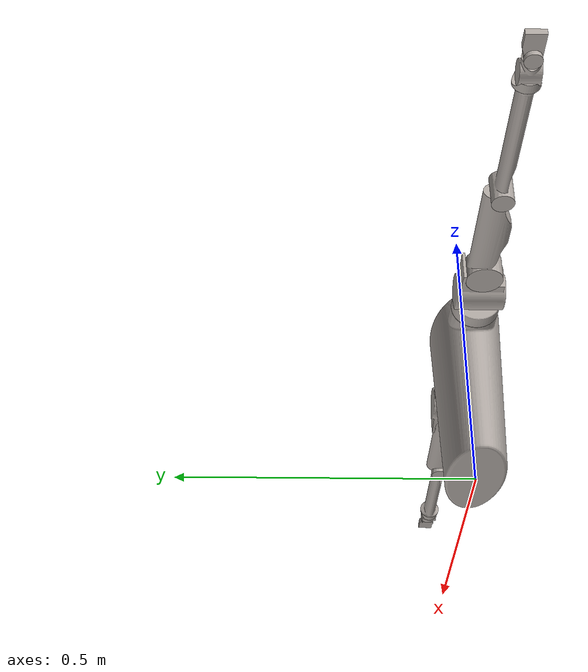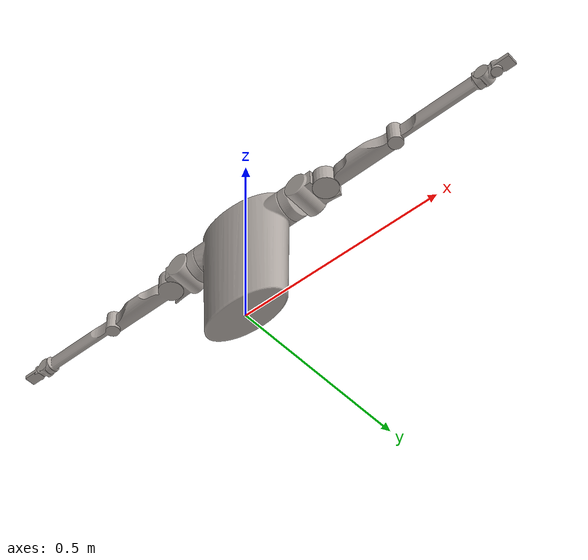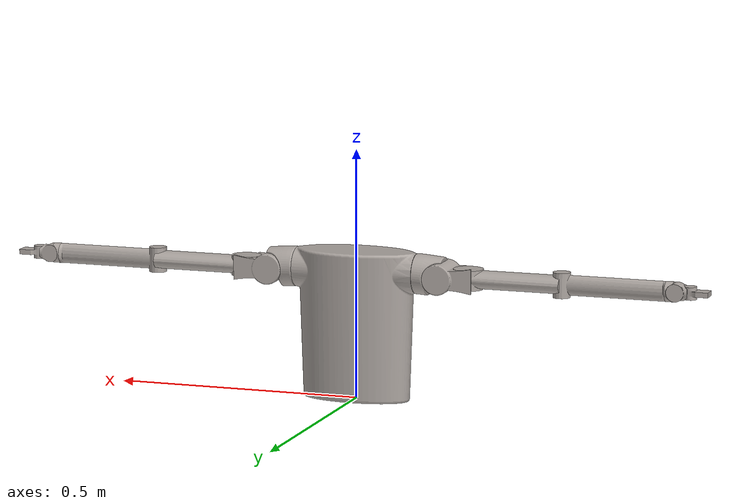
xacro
<robot name="upper_14" xmlns:xacro="http://www.ros.org/wiki/xacro">

  <!--fix the upper_body_link-->
  <link name="world"/>

  <joint name="fixed" type="fixed">
    <parent link="world"/>
    <child link="upper_body_link"/>
  </joint>

  <!--This is the robot describtion-->
  <link name="upper_body_link">
    <inertial>
      <origin xyz="-4.3975E-06 -1.1609E-08 0.15913" rpy="0 0 0" />
      <mass value="26.766" />
      <inertia
        ixx="10" ixy="10" ixz="10"
        iyy="10" iyz="10"
        izz="10" />
    </inertial>

    <visual>
      <origin xyz="0 0 0" rpy="0 0 0" />
      <geometry>
        <mesh filename="package://upper_14/meshes/upper_body_link.STL" />
      </geometry>
      <material name="">
        <color rgba="0.68627 0.65882 0.63922 1" />
      </material>
    </visual>

    <collision>
      <origin xyz="0 0 0" rpy="0 0 0" />
      <geometry>
        <mesh filename="package://upper_14/meshes/upper_body_link.STL" />
      </geometry>
    </collision>
  </link>

  <joint name="l_shoulder_roll" type="continuous">
    <origin xyz="0.125 0 0.26" rpy="0 -1.5708 0" />
    <parent link="upper_body_link" />
    <child link="l_shoulder_roll_link" />
    <axis xyz="0 0 1" />
    <dynamics damping="0.7" friction="0.2"/>
  </joint>

  <link name="l_shoulder_roll_link">
    <inertial>
      <origin xyz="0.0033683 -7.6367E-09 -0.015946" rpy="0 0 0" />
      <mass value="0.63417" />
      <inertia
        ixx="0.000315" ixy="0" ixz="-5.2E-05"
        iyy="0.000373" iyz="0"
        izz="0.000525" />
    </inertial>

    <visual>
      <origin xyz="0 0 0" rpy="0 0 0" />
      <geometry>
        <mesh filename="package://upper_14/meshes/l_shoulder_roll_link.STL" />
      </geometry>
      <material name="">
        <color rgba="0.68627 0.65882 0.63922 1" />
      </material>
    </visual>

    <collision>
      <origin xyz="0 0 0" rpy="0 0 0" />
      <geometry>
        <mesh filename="package://upper_14/meshes/l_shoulder_roll_link.STL" />
      </geometry>
    </collision>
  </link>

  <link name="l_shoulder_pitch_link">
    <inertial>
      <origin xyz="0.0032993 5.9585E-10 -0.00098089" rpy="0 0 0" />
      <mass value="1.0724" />
      <inertia
        ixx="0.000841" ixy="0" ixz="-5.4E-05"
        iyy="0.000973" iyz="0"
        izz="0.000606" />
    </inertial>

    <visual>
      <origin xyz="0 0 0" rpy="0 0 0" />
      <geometry>
        <mesh filename="package://upper_14/meshes/l_shoulder_pitch_link.STL" />
      </geometry>
      <material name="">
        <color rgba="0.68627 0.65882 0.63922 1" />
      </material>
    </visual>

    <collision>
      <origin xyz="0 0 0" rpy="0 0 0" />
      <geometry>
        <mesh filename="package://upper_14/meshes/l_shoulder_pitch_link.STL" />
      </geometry>
    </collision>
  </link>

  <joint name="l_shoulder_pitch" type="revolute">
    <origin xyz="-0.0037133 0 -0.052049" rpy="1.5708 1.5708 0" />
    <parent link="l_shoulder_roll_link" />
    <child link="l_shoulder_pitch_link" />
    <axis xyz="0 0 -1" />
    <limit lower="-0.6981" upper="1.7104" effort="50000" velocity="500" />
    <dynamics damping="0.7" friction="0.2"  />
  </joint>

  <link name="l_shoulder_yaw_link">
    <inertial>
      <origin xyz="0.065121 -0.0020967 1.7569E-07" rpy="0 0 0" />
      <mass value="1.3826" />
      <inertia
        ixx="0.000398" ixy="-0.000132" ixz="0"
        iyy="0.005026" iyz="0"
        izz="0.005143" />
    </inertial>

    <visual>
      <origin xyz="0 0 0" rpy="0 0 0" />
      <geometry>
        <mesh filename="package://upper_14/meshes/l_shoulder_yaw_link.STL" />
      </geometry>
      <material name="">
        <color rgba="0.68627 0.65882 0.63922 1" />
      </material>
    </visual>

    <collision>
      <origin xyz="0 0 0" rpy="0 0 0" />
      <geometry>
        <mesh filename="package://upper_14/meshes/l_shoulder_yaw_link.STL" />
      </geometry>
    </collision>
  </link>

  <joint name="l_shoulder_yaw" type="revolute">
    <origin xyz="0.055 0 0" rpy="1.5708 -4.1633E-17 -2.6021E-18" />
    <parent link="l_shoulder_pitch_link" />
    <child link="l_shoulder_yaw_link" />
    <axis xyz="0 0 1" />
    <limit lower="-0.1396" upper="1.6231" effort="50000" velocity="500" />
    <dynamics damping="0.7" friction="0.2"  />
  </joint>

  <link name="l_elbow_link">
    <inertial>
      <origin xyz="0.088184 -0.0003499 -1.9687E-07" rpy="0 0 0" />
      <mass value="0.81599" />
      <inertia
        ixx="0.000143" ixy="1.5E-05" ixz="0"
        iyy="0.004114" iyz="0"
        izz="0.004046" />
    </inertial>

    <visual>
      <origin xyz="0 0 0" rpy="0 0 0" />
      <geometry>
        <mesh filename="package://upper_14/meshes/l_elbow_link.STL" />
      </geometry>
      <material name="">
        <color rgba="0.68627 0.65882 0.63922 1" />
      </material>
    </visual>

    <collision>
      <origin xyz="0 0 0" rpy="0 0 0" />
      <geometry>
        <mesh filename="package://upper_14/meshes/l_elbow_link.STL" />
      </geometry>
    </collision>
  </link>

  <joint name="l_elbow" type="revolute">
    <origin xyz="0.1903 0 0" rpy="-4.2858E-16 9.6277E-17 -4.1263E-32" />
    <parent link="l_shoulder_yaw_link" />
    <child link="l_elbow_link" />
    <axis xyz="0 0 1" />
    <limit lower="-0.7853" upper="2.4085" effort="50000" velocity="500" />
    <dynamics damping="0.7" friction="0.2"  />
  </joint>

  <link name="l_wrist_roll_link">
    <inertial>
      <origin xyz="-1.4822E-09 1.5222E-08 -0.0042713" rpy="0 0 0" />
      <mass value="0.033212" />
      <inertia
        ixx="3E-03" ixy="0" ixz="0"
        iyy="6E-03" iyz="0"
        izz="8E-03" />
    </inertial>

    <visual>
      <origin xyz="0 0 0" rpy="0 0 0" />
      <geometry>
        <mesh filename="package://upper_14/meshes/l_wrist_roll_link.STL" />
      </geometry>
      <material name="">
        <color rgba="0.68627 0.65882 0.63922 1" />
      </material>
    </visual>

    <collision>
      <origin xyz="0 0 0" rpy="0 0 0" />
      <geometry>
        <mesh filename="package://upper_14/meshes/l_wrist_roll_link.STL" />
      </geometry>
    </collision>
  </link>

  <joint name="l_wrist_roll" type="continuous">
    <origin xyz="0.21 0 0" rpy="3.1416 1.5708 0" />
    <parent link="l_elbow_link" />
    <child link="l_wrist_roll_link" />
    <axis xyz="0 0 1" />
    <limit effort="50000" velocity="500" />
    <dynamics damping="0.7" friction="0.2"  />
  </joint>

  <link name="l_wrist_pitch_link">
    <inertial>
      <origin xyz="0.0009785 -2.8101E-08 -1.4985E-08" rpy="0 0 0" />
      <mass value="0.13385" />
      <inertia
        ixx="2.1E-03" ixy="0" ixz="0"
        iyy="2.2E-03" iyz="0"
        izz="2.2E-03" />
    </inertial>

    <visual>
      <origin xyz="0 0 0" rpy="0 0 0" />
      <geometry>
        <mesh filename="package://upper_14/meshes/l_wrist_pitch_link.STL" />
      </geometry>
      <material name="">
        <color rgba="0.68627 0.65882 0.63922 1" />
      </material>
    </visual>

    <collision>
      <origin xyz="0 0 0" rpy="0 0 0" />
      <geometry>
        <mesh filename="package://upper_14/meshes/l_wrist_pitch_link.STL" />
      </geometry>
    </collision>
  </link>

  <joint name="l_wrist_pitch" type="revolute">
    <origin xyz="0 0 -0.02" rpy="1.5708 1.5708 0" />
    <parent link="l_wrist_roll_link" />
    <child link="l_wrist_pitch_link" />
    <axis xyz="0 0 -1" />
    <limit lower="-0.6981" upper="0.6981" effort="50000" velocity="500" />
    <dynamics damping="0.7" friction="0.2"  />
  </joint>

  <link name="l_wrist_yaw_link">
    <inertial>
      <origin xyz="0.0096828 -0.0007914 2.2204E-16" rpy="0 0 0" />
      <mass value="0.089949" />
      <inertia
        ixx="8E-03" ixy="-1E-03" ixz="0"
        iyy="2E-03" iyz="0"
        izz="2.2E-03" />
    </inertial>

    <visual>
      <origin xyz="0 0 0" rpy="0 0 0" />
      <geometry>
        <mesh filename="package://upper_14/meshes/l_wrist_yaw_link.STL" />
      </geometry>
      <material name="">
        <color rgba="0.68627 0.65882 0.63922 1" />
      </material>
    </visual>

    <collision>
      <origin xyz="0 0 0" rpy="0 0 0" />
      <geometry>
        <mesh filename="package://upper_14/meshes/l_wrist_yaw_link.STL" />
      </geometry>
    </collision>
  </link>

  <joint name="l_wrist_yaw" type="revolute">
    <origin xyz="0.028 0 0" rpy="1.5708 -1.0276E-16 -6.9285E-31" />
    <parent link="l_wrist_pitch_link" />
    <child link="l_wrist_yaw_link" />
    <axis xyz="0 0 1" />
    <limit lower="-0.3141" upper="0.3141" effort="50000" velocity="500" />
    <dynamics damping="0.7" friction="0.2"  />
  </joint>

  <link name="r_shoulder_roll_link">
    <inertial>
      <origin xyz="0.0033683 7.6367E-09 0.015946" rpy="0 0 0" />
      <mass value="0.63417" />
      <inertia
        ixx="0.000315" ixy="0" ixz="5.2E-05"
        iyy="0.000373" iyz="0"
        izz="0.000525" />
    </inertial>

    <visual>
      <origin xyz="0 0 0" rpy="0 0 0" />
      <geometry>
        <mesh filename="package://upper_14/meshes/r_shoulder_roll_link.STL" />
      </geometry>
      <material name="">
        <color rgba="0.68627 0.65882 0.63922 1" />
      </material>
    </visual>

    <collision>
      <origin xyz="0 0 0" rpy="0 0 0" />
      <geometry>
        <mesh filename="package://upper_14/meshes/r_shoulder_roll_link.STL" />
      </geometry>
    </collision>
  </link>

  <joint name="r_shoulder_roll" type="continuous">
    <origin xyz="-0.125 0 0.26" rpy="0 -1.5708 0" />
    <parent link="upper_body_link" />
    <child link="r_shoulder_roll_link" />
    <axis xyz="0 0 -1" />
    <limit effort="50000" velocity="500" />
    <dynamics damping="0.7" friction="0.2"  />
  </joint>

  <link name="r_shoulder_pitch_link">
    <inertial>
      <origin xyz="0.0032993 -5.9585E-10 0.00098089" rpy="0 0 0" />
      <mass value="1.0724" />
      <inertia
        ixx="0.000841" ixy="0" ixz="5.4E-05"
        iyy="0.000973" iyz="0"
        izz="0.000606" />
    </inertial>

    <visual>
      <origin xyz="0 0 0" rpy="0 0 0" />
      <geometry>
        <mesh filename="package://upper_14/meshes/r_shoulder_pitch_link.STL" />
      </geometry>
      <material name="">
        <color rgba="0.68627 0.65882 0.63922 1" />
      </material>
    </visual>

    <collision>
      <origin xyz="0 0 0" rpy="0 0 0" />
      <geometry>
        <mesh filename="package://upper_14/meshes/r_shoulder_pitch_link.STL" />
      </geometry>
    </collision>
  </link>

  <joint name="r_shoulder_pitch" type="revolute">
    <origin xyz="-0.0037133 0 0.052049" rpy="-1.5708 -1.5708 0" />
    <parent link="r_shoulder_roll_link" />
    <child link="r_shoulder_pitch_link" />
    <axis xyz="0 0 -1" />
    <limit lower="-0.6981" upper="1.7104" effort="50000" velocity="500" />
    <dynamics damping="0.7" friction="0.2"  />
  </joint>

  <link name="r_shoulder_yaw_link">
    <inertial>
      <origin xyz="0.065121 -0.0020967 1.7569E-07" rpy="0 0 0" />
      <mass value="1.3826" />
      <inertia
        ixx="0.000398" ixy="-0.000132" ixz="0"
        iyy="0.005026" iyz="0"
        izz="0.005143" />
    </inertial>

    <visual>
      <origin xyz="0 0 0" rpy="0 0 0" />
      <geometry>
        <mesh filename="package://upper_14/meshes/r_shoulder_yaw_link.STL" />
      </geometry>
      <material name="">
        <color rgba="0.68627 0.65882 0.63922 1" />
      </material>
    </visual>

    <collision>
      <origin xyz="0 0 0" rpy="0 0 0" />
      <geometry>
        <mesh filename="package://upper_14/meshes/r_shoulder_yaw_link.STL" />
      </geometry>
    </collision>
  </link>

  <joint name="r_shoulder_yaw" type="revolute">
    <origin xyz="0.055 0 0" rpy="-1.5708 3.2819E-17 -4.3368E-18" />
    <parent link="r_shoulder_pitch_link" />
    <child link="r_shoulder_yaw_link" />
    <axis xyz="0 0 1" />
    <limit lower="-0.1396" upper="1.6231" effort="50000" velocity="500" />
    <dynamics damping="0.7" friction="0.2"  />
  </joint>

  <link name="r_elbow_link">
    <inertial>
      <origin xyz="0.088184 -0.0003499 -1.9687E-07" rpy="0 0 0" />
      <mass value="0.81599" />
      <inertia
        ixx="0.000143" ixy="1.5E-05" ixz="0"
        iyy="0.004114" iyz="0"
        izz="0.004046" />
    </inertial>

    <visual>
      <origin xyz="0 0 0" rpy="0 0 0" />
      <geometry>
        <mesh filename="package://upper_14/meshes/r_elbow_link.STL" />
      </geometry>
      <material name="">
        <color rgba="0.68627 0.65882 0.63922 1" />
      </material>
    </visual>

    <collision>
      <origin xyz="0 0 0" rpy="0 0 0" />
      <geometry>
        <mesh filename="package://upper_14/meshes/r_elbow_link.STL" />
      </geometry>
    </collision>
  </link>

  <joint name="r_elbow" type="revolute">
    <origin xyz="0.1903 0 0" rpy="1.2818E-16 -4.3368E-18 -2.8339E-19" />
    <parent link="r_shoulder_yaw_link" />
    <child link="r_elbow_link" />
    <axis xyz="0 0 1" />
    <limit lower="-0.7853" upper="2.4085" effort="50000" velocity="500" />
    <dynamics damping="0.7" friction="0.2"  />
  </joint>

  <link name="r_wrist_roll_link">
    <inertial>
      <origin xyz="-1.4822E-09 -1.5222E-08 0.0042713" rpy="0 0 0" />
      <mass value="0.033212" />
      <inertia
        ixx="3E-04" ixy="0" ixz="0"
        iyy="6E-04" iyz="0"
        izz="8E-04" />
    </inertial>

    <visual>
      <origin xyz="0 0 0" rpy="0 0 0" />
      <geometry>
        <mesh filename="package://upper_14/meshes/r_wrist_roll_link.STL" />
      </geometry>
      <material name="">
        <color rgba="0.68627 0.65882 0.63922 1" />
      </material>
    </visual>

    <collision>
      <origin xyz="0 0 0" rpy="0 0 0" />
      <geometry>
        <mesh filename="package://upper_14/meshes/r_wrist_roll_link.STL" />
      </geometry>
    </collision>
  </link>

  <joint name="r_wrist_roll" type="continuous">
    <origin xyz="0.21 0 0" rpy="0 1.5708 0" />
    <parent link="r_elbow_link" />
    <child link="r_wrist_roll_link" />
    <axis xyz="0 0 -1" />
    <limit effort="50000" velocity="500" />
    <dynamics damping="0.7" friction="0.2"  />
  </joint>

  <link name="r_wrist_pitch_link">
    <inertial>
      <origin xyz="0.0009785 -2.8101E-08 -1.4985E-08" rpy="0 0 0" />
      <mass value="0.13385" />
      <inertia
        ixx="2.1E-04" ixy="0" ixz="0"
        iyy="2.2E-04" iyz="0"
        izz="2.2E-04" />
    </inertial>

    <visual>
      <origin xyz="0 0 0" rpy="0 0 0" />
      <geometry>
        <mesh filename="package://upper_14/meshes/r_wrist_pitch_link.STL" />
      </geometry>
      <material name="">
        <color rgba="0.68627 0.65882 0.63922 1" />
      </material>
    </visual>

    <collision>
      <origin xyz="0 0 0" rpy="0 0 0" />
      <geometry>
        <mesh filename="package://upper_14/meshes/r_wrist_pitch_link.STL" />
      </geometry>
    </collision>
  </link>

  <joint name="r_wrist_pitch" type="revolute">
    <origin xyz="0 0 0.02" rpy="1.5708 -1.5708 0" />
    <parent link="r_wrist_roll_link" />
    <child link="r_wrist_pitch_link" />
    <axis xyz="0 0 -1" />
    <limit lower="-0.6981" upper="0.6981" effort="50000" velocity="500" />
    <dynamics damping="0.7" friction="0.2"  />
  </joint>

  <link name="r_wrist_yaw_link">
    <inertial>
      <origin xyz="0.0096828 -0.0007914 0" rpy="0 0 0" />
      <mass value="0.089949" />
      <inertia
        ixx="8E-04" ixy="-1E-04" ixz="0"
        iyy="2E-04" iyz="0"
        izz="2.2E-04" />
    </inertial>

    <visual>
      <origin xyz="0 0 0" rpy="0 0 0" />
      <geometry>
        <mesh filename="package://upper_14/meshes/r_wrist_yaw_link.STL" />
      </geometry>
      <material name="">
        <color rgba="0.68627 0.65882 0.63922 1" />
      </material>
    </visual>

    <collision>
      <origin xyz="0 0 0" rpy="0 0 0" />
      <geometry>
        <mesh filename="package://upper_14/meshes/r_wrist_yaw_link.STL" />
      </geometry>
    </collision>
  </link>

  <joint name="r_wrist_yaw" type="revolute">
    <origin xyz="0.028 0 0" rpy="-1.5708 3.3944E-20 8.6736E-18" />
    <parent link="r_wrist_pitch_link" />
    <child link="r_wrist_yaw_link" />
    <axis xyz="0 0 1" />
    <limit lower="-0.3141" upper="0.3141" effort="50000" velocity="500" />
    <dynamics damping="0.7" friction="0.2"  />
  </joint>

  <transmission name="tran1">
    <type>transmission_interface/SimpleTransmission</type>
    <joint name="l_shoulder_roll">
      <hardwareInterface>hardware_interface/EffortJointInterface</hardwareInterface>
    </joint>
    <actuator name="motor1">
      <hardwareInterface>hardware_interface/EffortJointInterface</hardwareInterface>
      <mechanicalReduction>1</mechanicalReduction>
    </actuator>
  </transmission>

  <transmission name="tran2">
    <type>transmission_interface/SimpleTransmission</type>
    <joint name="l_shoulder_pitch">
      <hardwareInterface>hardware_interface/EffortJointInterface</hardwareInterface>
    </joint>
    <actuator name="motor2">
      <hardwareInterface>hardware_interface/EffortJointInterface</hardwareInterface>
      <mechanicalReduction>1</mechanicalReduction>
    </actuator>
  </transmission>

  <transmission name="tran3">
    <type>transmission_interface/SimpleTransmission</type>
    <joint name="l_shoulder_yaw">
      <hardwareInterface>hardware_interface/EffortJointInterface</hardwareInterface>
    </joint>
    <actuator name="motor3">
      <hardwareInterface>hardware_interface/EffortJointInterface</hardwareInterface>
      <mechanicalReduction>1</mechanicalReduction>
    </actuator>
  </transmission>

  <transmission name="tran4">
    <type>transmission_interface/SimpleTransmission</type>
    <joint name="l_elbow">
      <hardwareInterface>hardware_interface/EffortJointInterface</hardwareInterface>
    </joint>
    <actuator name="motor4">
      <hardwareInterface>hardware_interface/EffortJointInterface</hardwareInterface>
      <mechanicalReduction>1</mechanicalReduction>
    </actuator>
  </transmission>

  <transmission name="tran5">
    <type>transmission_interface/SimpleTransmission</type>
    <joint name="l_wrist_roll">
      <hardwareInterface>hardware_interface/EffortJointInterface</hardwareInterface>
    </joint>
    <actuator name="motor5">
      <hardwareInterface>hardware_interface/EffortJointInterface</hardwareInterface>
      <mechanicalReduction>1</mechanicalReduction>
    </actuator>
  </transmission>

  <transmission name="tran6">
    <type>transmission_interface/SimpleTransmission</type>
    <joint name="l_wrist_pitch">
      <hardwareInterface>hardware_interface/EffortJointInterface</hardwareInterface>
    </joint>
    <actuator name="motor6">
      <hardwareInterface>hardware_interface/EffortJointInterface</hardwareInterface>
      <mechanicalReduction>1</mechanicalReduction>
    </actuator>
  </transmission>

  <transmission name="tran7">
    <type>transmission_interface/SimpleTransmission</type>
    <joint name="l_wrist_yaw">
      <hardwareInterface>hardware_interface/EffortJointInterface</hardwareInterface>
    </joint>
    <actuator name="motor7">
      <hardwareInterface>hardware_interface/EffortJointInterface</hardwareInterface>
      <mechanicalReduction>1</mechanicalReduction>
    </actuator>
  </transmission>

  <transmission name="tran8">
    <type>transmission_interface/SimpleTransmission</type>
    <joint name="r_shoulder_roll">
      <hardwareInterface>hardware_interface/EffortJointInterface</hardwareInterface>
    </joint>
    <actuator name="motor8">
      <hardwareInterface>hardware_interface/EffortJointInterface</hardwareInterface>
      <mechanicalReduction>1</mechanicalReduction>
    </actuator>
  </transmission>

  <transmission name="tran9">
    <type>transmission_interface/SimpleTransmission</type>
    <joint name="r_shoulder_pitch">
      <hardwareInterface>hardware_interface/EffortJointInterface</hardwareInterface>
    </joint>
    <actuator name="motor9">
      <hardwareInterface>hardware_interface/EffortJointInterface</hardwareInterface>
      <mechanicalReduction>1</mechanicalReduction>
    </actuator>
  </transmission>

  <transmission name="tran10">
    <type>transmission_interface/SimpleTransmission</type>
    <joint name="r_shoulder_yaw">
      <hardwareInterface>hardware_interface/EffortJointInterface</hardwareInterface>
    </joint>
    <actuator name="motor10">
      <hardwareInterface>hardware_interface/EffortJointInterface</hardwareInterface>
      <mechanicalReduction>1</mechanicalReduction>
    </actuator>
  </transmission>

  <transmission name="tran11">
    <type>transmission_interface/SimpleTransmission</type>
    <joint name="r_elbow">
      <hardwareInterface>hardware_interface/EffortJointInterface</hardwareInterface>
    </joint>
    <actuator name="motor11">
      <hardwareInterface>hardware_interface/EffortJointInterface</hardwareInterface>
      <mechanicalReduction>1</mechanicalReduction>
    </actuator>
  </transmission>

  <transmission name="tran12">
    <type>transmission_interface/SimpleTransmission</type>
    <joint name="r_wrist_roll">
      <hardwareInterface>hardware_interface/EffortJointInterface</hardwareInterface>
    </joint>
    <actuator name="motor12">
      <hardwareInterface>hardware_interface/EffortJointInterface</hardwareInterface>
      <mechanicalReduction>1</mechanicalReduction>
    </actuator>
  </transmission>

  <transmission name="tran13">
    <type>transmission_interface/SimpleTransmission</type>
    <joint name="r_wrist_pitch">
      <hardwareInterface>hardware_interface/EffortJointInterface</hardwareInterface>
    </joint>
    <actuator name="motor13">
      <hardwareInterface>hardware_interface/EffortJointInterface</hardwareInterface>
      <mechanicalReduction>1</mechanicalReduction>
    </actuator>
  </transmission>

  <transmission name="tran14">
    <type>transmission_interface/SimpleTransmission</type>
    <joint name="r_wrist_yaw">
      <hardwareInterface>hardware_interface/EffortJointInterface</hardwareInterface>
    </joint>
    <actuator name="motor14">
      <hardwareInterface>hardware_interface/EffortJointInterface</hardwareInterface>
      <mechanicalReduction>1</mechanicalReduction>
    </actuator>
  </transmission>

  <gazebo>
    <plugin name="gazebo_ros_control" filename="libgazebo_ros_control.so">
      <robotNamespace>/lita</robotNamespace>
      <robotSimType>gazebo_ros_control/DefaultRobotHWSim</robotSimType>
    </plugin>
  </gazebo>

</robot>
